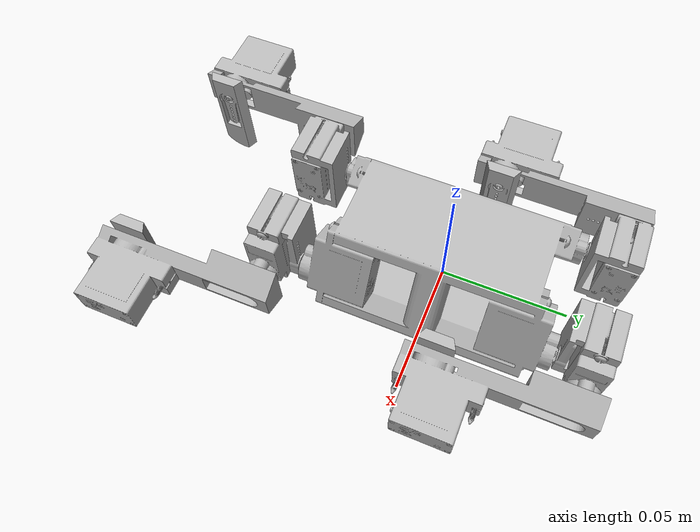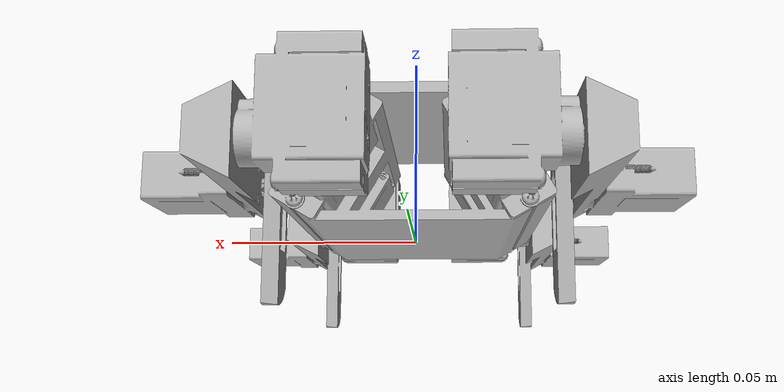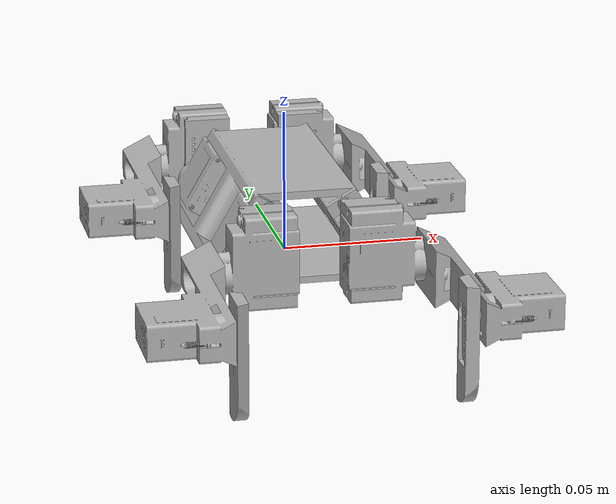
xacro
<?xml version="1.0" ?>
<robot name="dog_assembly" xmlns:xacro="http://www.ros.org/wiki/xacro">

<xacro:include filename="$(find dog_assembly_description)/urdf/materials.xacro" />
<xacro:include filename="$(find dog_assembly_description)/urdf/dog_assembly.trans" />
<xacro:include filename="$(find dog_assembly_description)/urdf/dog_assembly.gazebo" />
<link name="base_link">
  <inertial>
    <origin xyz="-0.0005830294128865784 1.3645027639924189e-05 0.015980815837782218" rpy="0 0 0"/>
    <mass value="0.0654122809057055"/>
    <inertia ixx="5.6e-05" iyy="3.1e-05" izz="7.3e-05" ixy="0.0" iyz="0.0" ixz="0.0"/>
  </inertial>
  <visual>
    <origin xyz="0 0 0" rpy="0 0 0"/>
    <geometry>
      <mesh filename="package://dog_assembly_description/meshes/base_link.stl" scale="0.001 0.001 0.001"/>
    </geometry>
    <material name="silver"/>
  </visual>
  <collision>
    <origin xyz="0 0 0" rpy="0 0 0"/>
    <geometry>
      <mesh filename="package://dog_assembly_description/meshes/base_link.stl" scale="0.001 0.001 0.001"/>
    </geometry>
  </collision>
</link>

<link name="hip_L_simple_v2_1">
  <inertial>
    <origin xyz="0.0026469377652367614 0.00815492666919019 0.00602136608265076" rpy="0 0 0"/>
    <mass value="0.010651772434958885"/>
    <inertia ixx="1e-06" iyy="1e-06" izz="1e-06" ixy="0.0" iyz="0.0" ixz="-0.0"/>
  </inertial>
  <visual>
    <origin xyz="0.023078 -0.051162 -0.012223" rpy="0 0 0"/>
    <geometry>
      <mesh filename="package://dog_assembly_description/meshes/hip_L_simple_v2_1.stl" scale="0.001 0.001 0.001"/>
    </geometry>
    <material name="silver"/>
  </visual>
  <collision>
    <origin xyz="0.023078 -0.051162 -0.012223" rpy="0 0 0"/>
    <geometry>
      <mesh filename="package://dog_assembly_description/meshes/hip_L_simple_v2_1.stl" scale="0.001 0.001 0.001"/>
    </geometry>
  </collision>
</link>

<link name="hip_L_simple_v1_Mirror___1__1">
  <inertial>
    <origin xyz="-0.0026469632642493746 0.008154926656354214 0.006021379483711616" rpy="0 0 0"/>
    <mass value="0.010651772367412023"/>
    <inertia ixx="1e-06" iyy="1e-06" izz="1e-06" ixy="-0.0" iyz="0.0" ixz="0.0"/>
  </inertial>
  <visual>
    <origin xyz="-0.021962 -0.051162 -0.012156" rpy="0 0 0"/>
    <geometry>
      <mesh filename="package://dog_assembly_description/meshes/hip_L_simple_v1_Mirror___1__1.stl" scale="0.001 0.001 0.001"/>
    </geometry>
    <material name="silver"/>
  </visual>
  <collision>
    <origin xyz="-0.021962 -0.051162 -0.012156" rpy="0 0 0"/>
    <geometry>
      <mesh filename="package://dog_assembly_description/meshes/hip_L_simple_v1_Mirror___1__1.stl" scale="0.001 0.001 0.001"/>
    </geometry>
  </collision>
</link>

<link name="hip_L_simple_v1_Mirror__Mirror__1">
  <inertial>
    <origin xyz="-0.002646963169021202 -0.008154926669190196 0.006021378784542997" rpy="0 0 0"/>
    <mass value="0.010651772434958885"/>
    <inertia ixx="1e-06" iyy="1e-06" izz="1e-06" ixy="0.0" iyz="-0.0" ixz="0.0"/>
  </inertial>
  <visual>
    <origin xyz="-0.021962 0.051162 -0.012156" rpy="0 0 0"/>
    <geometry>
      <mesh filename="package://dog_assembly_description/meshes/hip_L_simple_v1_Mirror__Mirror__1.stl" scale="0.001 0.001 0.001"/>
    </geometry>
    <material name="silver"/>
  </visual>
  <collision>
    <origin xyz="-0.021962 0.051162 -0.012156" rpy="0 0 0"/>
    <geometry>
      <mesh filename="package://dog_assembly_description/meshes/hip_L_simple_v1_Mirror__Mirror__1.stl" scale="0.001 0.001 0.001"/>
    </geometry>
  </collision>
</link>

<link name="hip_L_simple_v1_Mirror__1">
  <inertial>
    <origin xyz="0.002646937860464965 -0.008154926656354235 0.006021366781819396" rpy="0 0 0"/>
    <mass value="0.010651772367412023"/>
    <inertia ixx="1e-06" iyy="1e-06" izz="1e-06" ixy="-0.0" iyz="-0.0" ixz="-0.0"/>
  </inertial>
  <visual>
    <origin xyz="0.023078 0.051162 -0.012223" rpy="0 0 0"/>
    <geometry>
      <mesh filename="package://dog_assembly_description/meshes/hip_L_simple_v1_Mirror__1.stl" scale="0.001 0.001 0.001"/>
    </geometry>
    <material name="silver"/>
  </visual>
  <collision>
    <origin xyz="0.023078 0.051162 -0.012223" rpy="0 0 0"/>
    <geometry>
      <mesh filename="package://dog_assembly_description/meshes/hip_L_simple_v1_Mirror__1.stl" scale="0.001 0.001 0.001"/>
    </geometry>
  </collision>
</link>

<link name="left_leg_simplified_v2_1">
  <inertial>
    <origin xyz="-0.0114460521349663 -0.03523148516952591 8.48880076726715e-05" rpy="0 0 0"/>
    <mass value="0.012833816117245277"/>
    <inertia ixx="5e-06" iyy="1e-06" izz="6e-06" ixy="-1e-06" iyz="0.0" ixz="0.0"/>
  </inertial>
  <visual>
    <origin xyz="0.038839 -0.060562 -0.013321" rpy="0 0 0"/>
    <geometry>
      <mesh filename="package://dog_assembly_description/meshes/left_leg_simplified_v2_1.stl" scale="0.001 0.001 0.001"/>
    </geometry>
    <material name="silver"/>
  </visual>
  <collision>
    <origin xyz="0.038839 -0.060562 -0.013321" rpy="0 0 0"/>
    <geometry>
      <mesh filename="package://dog_assembly_description/meshes/left_leg_simplified_v2_1.stl" scale="0.001 0.001 0.001"/>
    </geometry>
  </collision>
</link>

<link name="left_leg_simplified_v2_Mirror__1">
  <inertial>
    <origin xyz="0.010647029661782971 -0.035231468444412606 8.489995842720331e-05" rpy="0 0 0"/>
    <mass value="0.012833810246660365"/>
    <inertia ixx="5e-06" iyy="1e-06" izz="6e-06" ixy="1e-06" iyz="0.0" ixz="-0.0"/>
  </inertial>
  <visual>
    <origin xyz="-0.037722 -0.060562 -0.013254" rpy="0 0 0"/>
    <geometry>
      <mesh filename="package://dog_assembly_description/meshes/left_leg_simplified_v2_Mirror__1.stl" scale="0.001 0.001 0.001"/>
    </geometry>
    <material name="silver"/>
  </visual>
  <collision>
    <origin xyz="-0.037722 -0.060562 -0.013254" rpy="0 0 0"/>
    <geometry>
      <mesh filename="package://dog_assembly_description/meshes/left_leg_simplified_v2_Mirror__1.stl" scale="0.001 0.001 0.001"/>
    </geometry>
  </collision>
</link>

<link name="left_leg_simplified_v2_Mirror__2">
  <inertial>
    <origin xyz="0.010647029661783013 -0.03523211157862626 8.489995842720331e-05" rpy="0 0 0"/>
    <mass value="0.012833810246660365"/>
    <inertia ixx="5e-06" iyy="1e-06" izz="6e-06" ixy="1e-06" iyz="0.0" ixz="-0.0"/>
  </inertial>
  <visual>
    <origin xyz="-0.037722 0.060562 -0.013254" rpy="0 0 0"/>
    <geometry>
      <mesh filename="package://dog_assembly_description/meshes/left_leg_simplified_v2_Mirror__2.stl" scale="0.001 0.001 0.001"/>
    </geometry>
    <material name="silver"/>
  </visual>
  <collision>
    <origin xyz="-0.037722 0.060562 -0.013254" rpy="0 0 0"/>
    <geometry>
      <mesh filename="package://dog_assembly_description/meshes/left_leg_simplified_v2_Mirror__2.stl" scale="0.001 0.001 0.001"/>
    </geometry>
  </collision>
</link>

<link name="left_leg_simplified_v2__1__1">
  <inertial>
    <origin xyz="-0.0114460521349663 -0.035232128303739556 8.488800767265763e-05" rpy="0 0 0"/>
    <mass value="0.012833816117245277"/>
    <inertia ixx="5e-06" iyy="1e-06" izz="6e-06" ixy="-1e-06" iyz="0.0" ixz="0.0"/>
  </inertial>
  <visual>
    <origin xyz="0.038839 0.060562 -0.013321" rpy="0 0 0"/>
    <geometry>
      <mesh filename="package://dog_assembly_description/meshes/left_leg_simplified_v2__1__1.stl" scale="0.001 0.001 0.001"/>
    </geometry>
    <material name="silver"/>
  </visual>
  <collision>
    <origin xyz="0.038839 0.060562 -0.013321" rpy="0 0 0"/>
    <geometry>
      <mesh filename="package://dog_assembly_description/meshes/left_leg_simplified_v2__1__1.stl" scale="0.001 0.001 0.001"/>
    </geometry>
  </collision>
</link>

<link name="lower_leg_L_simplified_v1_Mirror__1">
  <inertial>
    <origin xyz="-0.0004086103204771624 0.009896117257288619 -9.70420715518637e-06" rpy="0 0 0"/>
    <mass value="0.001771949492845006"/>
    <inertia ixx="0.0" iyy="0.0" izz="0.0" ixy="0.0" iyz="-0.0" ixz="-0.0"/>
  </inertial>
  <visual>
    <origin xyz="-0.036972 -0.009462 -0.013404" rpy="0 0 0"/>
    <geometry>
      <mesh filename="package://dog_assembly_description/meshes/lower_leg_L_simplified_v1_Mirror__1.stl" scale="0.001 0.001 0.001"/>
    </geometry>
    <material name="silver"/>
  </visual>
  <collision>
    <origin xyz="-0.036972 -0.009462 -0.013404" rpy="0 0 0"/>
    <geometry>
      <mesh filename="package://dog_assembly_description/meshes/lower_leg_L_simplified_v1_Mirror__1.stl" scale="0.001 0.001 0.001"/>
    </geometry>
  </collision>
</link>

<link name="lower_leg_L_simplified_v1_Mirror__2">
  <inertial>
    <origin xyz="-0.00040861032047719015 0.009895474123074968 -9.704207155175962e-06" rpy="0 0 0"/>
    <mass value="0.001771949492845006"/>
    <inertia ixx="0.0" iyy="0.0" izz="0.0" ixy="0.0" iyz="-0.0" ixz="-0.0"/>
  </inertial>
  <visual>
    <origin xyz="-0.036972 0.111662 -0.013404" rpy="0 0 0"/>
    <geometry>
      <mesh filename="package://dog_assembly_description/meshes/lower_leg_L_simplified_v1_Mirror__2.stl" scale="0.001 0.001 0.001"/>
    </geometry>
    <material name="silver"/>
  </visual>
  <collision>
    <origin xyz="-0.036972 0.111662 -0.013404" rpy="0 0 0"/>
    <geometry>
      <mesh filename="package://dog_assembly_description/meshes/lower_leg_L_simplified_v1_Mirror__2.stl" scale="0.001 0.001 0.001"/>
    </geometry>
  </collision>
</link>

<link name="lower_leg_L_simplified_v1__1__1">
  <inertial>
    <origin xyz="0.0004095849166926846 0.009895474123074968 -9.716909047385869e-06" rpy="0 0 0"/>
    <mass value="0.0017719494928450056"/>
    <inertia ixx="0.0" iyy="0.0" izz="0.0" ixy="-0.0" iyz="-0.0" ixz="0.0"/>
  </inertial>
  <visual>
    <origin xyz="0.038889 0.111662 -0.013471" rpy="0 0 0"/>
    <geometry>
      <mesh filename="package://dog_assembly_description/meshes/lower_leg_L_simplified_v1__1__1.stl" scale="0.001 0.001 0.001"/>
    </geometry>
    <material name="silver"/>
  </visual>
  <collision>
    <origin xyz="0.038889 0.111662 -0.013471" rpy="0 0 0"/>
    <geometry>
      <mesh filename="package://dog_assembly_description/meshes/lower_leg_L_simplified_v1__1__1.stl" scale="0.001 0.001 0.001"/>
    </geometry>
  </collision>
</link>

<link name="lower_leg_L_simplified_v1_1">
  <inertial>
    <origin xyz="0.0004095849166926846 0.009896117257288633 -9.716909047396277e-06" rpy="0 0 0"/>
    <mass value="0.0017719494928450056"/>
    <inertia ixx="0.0" iyy="0.0" izz="0.0" ixy="-0.0" iyz="-0.0" ixz="0.0"/>
  </inertial>
  <visual>
    <origin xyz="0.038889 -0.009462 -0.013471" rpy="0 0 0"/>
    <geometry>
      <mesh filename="package://dog_assembly_description/meshes/lower_leg_L_simplified_v1_1.stl" scale="0.001 0.001 0.001"/>
    </geometry>
    <material name="silver"/>
  </visual>
  <collision>
    <origin xyz="0.038889 -0.009462 -0.013471" rpy="0 0 0"/>
    <geometry>
      <mesh filename="package://dog_assembly_description/meshes/lower_leg_L_simplified_v1_1.stl" scale="0.001 0.001 0.001"/>
    </geometry>
  </collision>
</link>

<joint name="Revolute 1" type="revolute">
  <origin xyz="-0.023078 0.051162 0.012223" rpy="0 0 0"/>
  <parent link="base_link"/>
  <child link="hip_L_simple_v2_1"/>
  <axis xyz="0.0 -1.0 0.0"/>
  <limit upper="2.617994" lower="-0.523599" effort="100" velocity="100"/>
</joint>

<joint name="Revolute 2" type="revolute">
  <origin xyz="0.021962 0.051162 0.012156" rpy="0 0 0"/>
  <parent link="base_link"/>
  <child link="hip_L_simple_v1_Mirror___1__1"/>
  <axis xyz="0.0 1.0 -0.0"/>
  <limit upper="2.617994" lower="-0.523599" effort="100" velocity="100"/>
</joint>

<joint name="Revolute 3" type="revolute">
  <origin xyz="0.021962 -0.051162 0.012156" rpy="0 0 0"/>
  <parent link="base_link"/>
  <child link="hip_L_simple_v1_Mirror__Mirror__1"/>
  <axis xyz="-0.0 1.0 0.0"/>
  <limit upper="2.617994" lower="-0.523599" effort="100" velocity="100"/>
</joint>

<joint name="Revolute 4" type="revolute">
  <origin xyz="-0.023078 -0.051162 0.012223" rpy="0 0 0"/>
  <parent link="base_link"/>
  <child link="hip_L_simple_v1_Mirror__1"/>
  <axis xyz="-0.0 -1.0 -0.0"/>
  <limit upper="2.617994" lower="-0.523599" effort="100" velocity="100"/>
</joint>

<joint name="Revolute 5" type="revolute">
  <origin xyz="-0.015761 0.0094 0.001098" rpy="0 0 0"/>
  <parent link="hip_L_simple_v2_1"/>
  <child link="left_leg_simplified_v2_1"/>
  <axis xyz="-1.0 0.0 -0.0"/>
  <limit upper="0.523599" lower="0.0" effort="100" velocity="100"/>
</joint>

<joint name="Revolute 6" type="revolute">
  <origin xyz="0.01576 0.0094 0.001098" rpy="0 0 0"/>
  <parent link="hip_L_simple_v1_Mirror___1__1"/>
  <child link="left_leg_simplified_v2_Mirror__1"/>
  <axis xyz="-1.0 -0.0 0.0"/>
  <limit upper="0.523599" lower="-2.617994" effort="100" velocity="100"/>
</joint>

<joint name="Revolute 7" type="revolute">
  <origin xyz="0.01576 -0.0094 0.001098" rpy="0 0 0"/>
  <parent link="hip_L_simple_v1_Mirror__Mirror__1"/>
  <child link="left_leg_simplified_v2_Mirror__2"/>
  <axis xyz="1.0 -0.0 -0.0"/>
  <limit upper="2.617994" lower="-0.523599" effort="100" velocity="100"/>
</joint>

<joint name="Revolute 8" type="revolute">
  <origin xyz="-0.015761 -0.0094 0.001098" rpy="0 0 0"/>
  <parent link="hip_L_simple_v1_Mirror__1"/>
  <child link="left_leg_simplified_v2__1__1"/>
  <axis xyz="1.0 0.0 0.0"/>
  <limit upper="2.617994" lower="-0.523599" effort="100" velocity="100"/>
</joint>

<joint name="Revolute 10" type="revolute">
  <origin xyz="-0.00075 -0.0511 0.00015" rpy="0 0 0"/>
  <parent link="left_leg_simplified_v2_Mirror__1"/>
  <child link="lower_leg_L_simplified_v1_Mirror__1"/>
  <axis xyz="1.0 0.0 -0.0"/>
  <limit upper="6.283185" lower="3.141593" effort="100" velocity="100"/>
</joint>

<joint name="Revolute 11" type="revolute">
  <origin xyz="-0.00075 -0.0511 0.00015" rpy="0 0 0"/>
  <parent link="left_leg_simplified_v2_Mirror__2"/>
  <child link="lower_leg_L_simplified_v1_Mirror__2"/>
  <axis xyz="1.0 0.0 -0.0"/>
  <limit upper="6.283185" lower="3.141593" effort="100" velocity="100"/>
</joint>

<joint name="Revolute 12" type="revolute">
  <origin xyz="-5e-05 -0.0511 0.00015" rpy="0 0 0"/>
  <parent link="left_leg_simplified_v2__1__1"/>
  <child link="lower_leg_L_simplified_v1__1__1"/>
  <axis xyz="1.0 -0.0 0.0"/>
  <limit upper="6.283185" lower="3.141593" effort="100" velocity="100"/>
</joint>

<joint name="Revolute 9" type="revolute">
  <origin xyz="-5e-05 -0.0511 0.00015" rpy="0 0 0"/>
  <parent link="left_leg_simplified_v2_1"/>
  <child link="lower_leg_L_simplified_v1_1"/>
  <axis xyz="1.0 -0.0 0.0"/>
  <limit upper="6.283185" lower="3.141593" effort="100" velocity="100"/>
</joint>

</robot>

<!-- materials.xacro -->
<robot name="dog_assembly" xmlns:xacro="http://www.ros.org/wiki/xacro" >

<material name="silver">
  <color rgba="0.700 0.700 0.700 1.000"/>
</material>

</robot>

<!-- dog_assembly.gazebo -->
<robot name="dog_assembly" xmlns:xacro="http://www.ros.org/wiki/xacro" >

<xacro:property name="body_color" value="Gazebo/Silver" />

<gazebo>
  <plugin name="control" filename="libgazebo_ros_control.so"/>
</gazebo>
<gazebo reference="base_link">
  <material>${body_color}</material>
  <mu1>0.2</mu1>
  <mu2>0.2</mu2>
  <selfCollide>true</selfCollide>
  <gravity>true</gravity>
</gazebo>

<gazebo reference="hip_L_simple_v2_1">
  <material>${body_color}</material>
  <mu1>0.2</mu1>
  <mu2>0.2</mu2>
  <selfCollide>true</selfCollide>
</gazebo>

<gazebo reference="hip_L_simple_v1_Mirror___1__1">
  <material>${body_color}</material>
  <mu1>0.2</mu1>
  <mu2>0.2</mu2>
  <selfCollide>true</selfCollide>
</gazebo>

<gazebo reference="hip_L_simple_v1_Mirror__Mirror__1">
  <material>${body_color}</material>
  <mu1>0.2</mu1>
  <mu2>0.2</mu2>
  <selfCollide>true</selfCollide>
</gazebo>

<gazebo reference="hip_L_simple_v1_Mirror__1">
  <material>${body_color}</material>
  <mu1>0.2</mu1>
  <mu2>0.2</mu2>
  <selfCollide>true</selfCollide>
</gazebo>

<gazebo reference="left_leg_simplified_v2_1">
  <material>${body_color}</material>
  <mu1>0.2</mu1>
  <mu2>0.2</mu2>
  <selfCollide>true</selfCollide>
</gazebo>

<gazebo reference="left_leg_simplified_v2_Mirror__1">
  <material>${body_color}</material>
  <mu1>0.2</mu1>
  <mu2>0.2</mu2>
  <selfCollide>true</selfCollide>
</gazebo>

<gazebo reference="left_leg_simplified_v2_Mirror__2">
  <material>${body_color}</material>
  <mu1>0.2</mu1>
  <mu2>0.2</mu2>
  <selfCollide>true</selfCollide>
</gazebo>

<gazebo reference="left_leg_simplified_v2__1__1">
  <material>${body_color}</material>
  <mu1>0.2</mu1>
  <mu2>0.2</mu2>
  <selfCollide>true</selfCollide>
</gazebo>

<gazebo reference="lower_leg_L_simplified_v1_Mirror__1">
  <material>${body_color}</material>
  <mu1>0.2</mu1>
  <mu2>0.2</mu2>
  <selfCollide>true</selfCollide>
</gazebo>

<gazebo reference="lower_leg_L_simplified_v1_Mirror__2">
  <material>${body_color}</material>
  <mu1>0.2</mu1>
  <mu2>0.2</mu2>
  <selfCollide>true</selfCollide>
</gazebo>

<gazebo reference="lower_leg_L_simplified_v1__1__1">
  <material>${body_color}</material>
  <mu1>0.2</mu1>
  <mu2>0.2</mu2>
  <selfCollide>true</selfCollide>
</gazebo>

<gazebo reference="lower_leg_L_simplified_v1_1">
  <material>${body_color}</material>
  <mu1>0.2</mu1>
  <mu2>0.2</mu2>
  <selfCollide>true</selfCollide>
</gazebo>

</robot>
